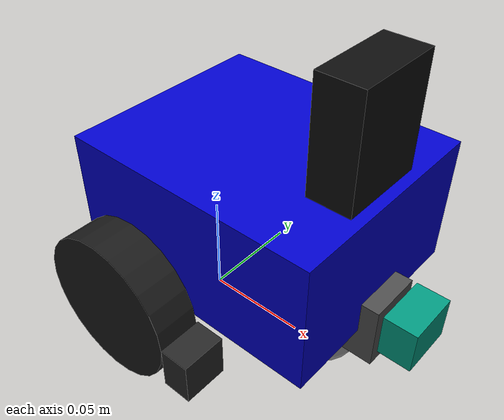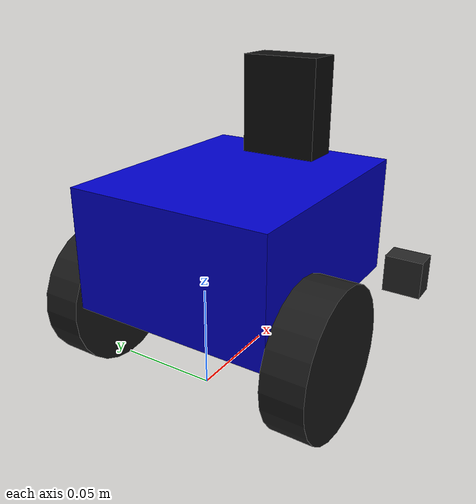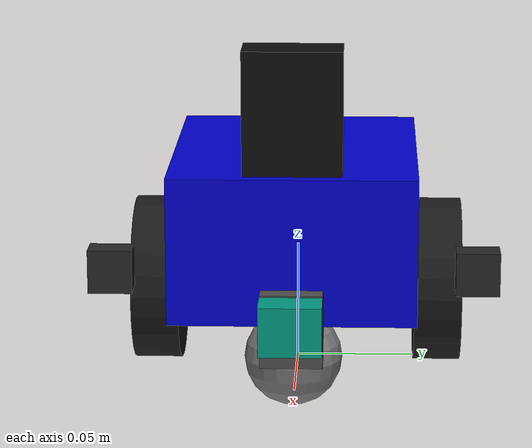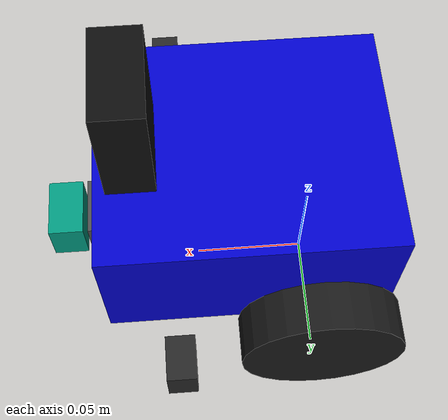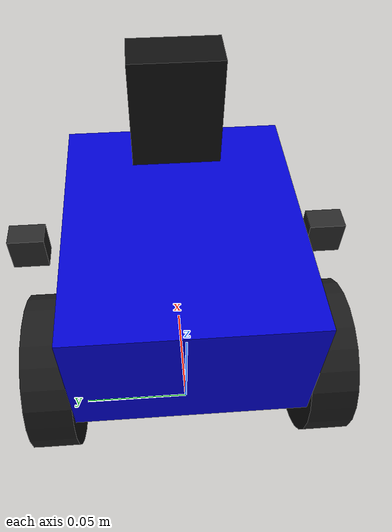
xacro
<?xml version="1.0"?>
<robot name="autonomous_bot" xmlns:xacro="http://www.ros.org/wiki/xacro">

  <!-- ===== DIMENSIONS (meter) =====
       base_link = midpoint of the 2 drive wheels (axle). +X = forward.
       Total size: ~0.20 (L) x 0.20 (W) x 0.10 (H) -> fits 30x30x30 cm -->
  <xacro:property name="body_len" value="0.12"/>
  <xacro:property name="body_wid" value="0.10"/>
  <xacro:property name="body_h"   value="0.06"/>
  <xacro:property name="body_x"   value="0.03"/>   <!-- body centre ahead of axle -->
  <xacro:property name="body_z"   value="0.07"/>   <!-- body centre, bottom at 0.04 -->
  <xacro:property name="wheel_r"  value="0.035"/>
  <xacro:property name="wheel_w"  value="0.02"/>
  <xacro:property name="wheel_y"  value="0.06"/>   <!-- wheel centre, inner face touches body -->
  <xacro:property name="caster_r" value="0.02"/>
  <xacro:property name="caster_x" value="0.065"/>
  <xacro:property name="PI2"      value="1.5707963"/>

  <xacro:property name="servo_x"    value="0.10"/>   <!-- joint (beam pivot) x -->
  <xacro:property name="servo_z"    value="0.045"/>  <!-- joint (beam pivot) z, beam height = 0.080 m abs -->
  <xacro:property name="servo_max"  value="1.4"/>    <!-- joint limit, rad (we sweep +-1.05) -->

  <!-- ===== CAMERA (raised mast, angled down: sees obstacle colours in the
       middle of the image AND the floor finish line in the bottom rows).
       Tilt must match CAM_TILT in the controller. -->
  <xacro:property name="cam_tilt" value="0.35"/>     <!-- rad down from horizontal -->
  <xacro:property name="cam_x"    value="0.075"/>
  <xacro:property name="cam_z"    value="0.15"/>     <!-- lens at 0.185 m above ground -->

  <xacro:property name="sonar_x"   value="0.06"/>
  <xacro:property name="sonar_y"   value="0.075"/>
  <xacro:property name="sonar_z"   value="0.055"/>
  <xacro:property name="sonar_half_cone" value="0.30"/>  <!-- rad: ~30 deg full
       cone, overlaps the front TOF sweep to close the near-side blind arc -->
  <xacro:property name="ray_max" value="5.50"/>

  <!-- ===== 0. FOOTPRINT (ground) ===== -->
  <link name="base_footprint"/>
  <joint name="base_footprint_joint" type="fixed">
    <parent link="base_footprint"/>
    <child link="base_link"/>
    <origin xyz="0 0 0" rpy="0 0 0"/>
  </joint>

  <!-- ===== 1. BASE (chassis) ===== -->
  <link name="base_link">
    <visual>
      <origin xyz="${body_x} 0 ${body_z}" rpy="0 0 0"/>
      <geometry><box size="${body_len} ${body_wid} ${body_h}"/></geometry>
      <material name="blue"><color rgba="0.0 0.0 0.8 1.0"/></material>
    </visual>
    <collision>
      <origin xyz="${body_x} 0 ${body_z}" rpy="0 0 0"/>
      <geometry><box size="${body_len} ${body_wid} ${body_h}"/></geometry>
    </collision>
    <inertial>
      <origin xyz="${body_x} 0 ${body_z}" rpy="0 0 0"/>
      <mass value="1.2"/>
      <inertia ixx="0.00136" ixy="0.0" ixz="0.0" iyy="0.0018" iyz="0.0" izz="0.00244"/>
    </inertial>
  </link>

  <!-- ===== 2. DRIVE WHEELS (N20 motors, rear) ===== -->
  <xacro:macro name="drive_wheel" params="side y">
    <link name="${side}_wheel">
      <visual>
        <origin xyz="0 0 0" rpy="${PI2} 0 0"/>
        <geometry><cylinder radius="${wheel_r}" length="${wheel_w}"/></geometry>
        <material name="black"><color rgba="0.1 0.1 0.1 1.0"/></material>
      </visual>
      <collision>
        <origin xyz="0 0 0" rpy="${PI2} 0 0"/>
        <geometry><cylinder radius="${wheel_r}" length="${wheel_w}"/></geometry>
      </collision>
      <inertial>
        <origin xyz="0 0 0" rpy="${PI2} 0 0"/>
        <mass value="0.05"/>
        <inertia ixx="0.000017" ixy="0.0" ixz="0.0" iyy="0.000017" iyz="0.0" izz="0.000031"/>
      </inertial>
    </link>
    <joint name="${side}_wheel_joint" type="continuous">
      <parent link="base_link"/>
      <child link="${side}_wheel"/>
      <origin xyz="0 ${y} ${wheel_r}" rpy="0 0 0"/>
      <axis xyz="0 1 0"/>
    </joint>
  </xacro:macro>

  <xacro:drive_wheel side="left"  y="${wheel_y}"/>
  <xacro:drive_wheel side="right" y="-${wheel_y}"/>

  <!-- ===== 3. FRONT CASTER (frictionless ball) ===== -->
  <link name="front_caster">
    <visual>
      <geometry><sphere radius="${caster_r}"/></geometry>
      <material name="grey"><color rgba="0.5 0.5 0.5 1.0"/></material>
    </visual>
    <collision>
      <geometry><sphere radius="${caster_r}"/></geometry>
    </collision>
    <inertial>
      <mass value="0.03"/>
      <inertia ixx="0.0000048" ixy="0.0" ixz="0.0" iyy="0.0000048" iyz="0.0" izz="0.0000048"/>
    </inertial>
  </link>
  <joint name="front_caster_joint" type="fixed">
    <parent link="base_link"/>
    <child link="front_caster"/>
    <origin xyz="${caster_x} 0.0 ${caster_r}" rpy="0 0 0"/>
  </joint>

  <!-- ===== 4. SERVO MOUNT (on the body top, front centre) ===== -->
  <link name="servo_mount_link">
    <visual>
      <origin xyz="0 0 -0.015"/>
      <geometry><box size="0.02 0.025 0.03"/></geometry>
      <material name="darkgrey"><color rgba="0.3 0.3 0.3 1.0"/></material>
    </visual>
    <inertial>
      <origin xyz="0 0 -0.015"/>
      <mass value="0.01"/>
      <inertia ixx="0.0000015" ixy="0.0" ixz="0.0" iyy="0.0000015" iyz="0.0" izz="0.0000015"/>
    </inertial>
  </link>
  <joint name="servo_mount_joint" type="fixed">
    <parent link="base_link"/>
    <child link="servo_mount_link"/>
    <origin xyz="0.088 0 ${servo_z + 0.01}" rpy="0 0 0"/>
  </joint>

  <link name="tof_link">
    <visual>
      <origin xyz="0.0075 0 0"/>
      <geometry><box size="0.015 0.025 0.02"/></geometry>
      <material name="teal"><color rgba="0.0 0.6 0.5 1.0"/></material>
    </visual>
    <inertial>
      <origin xyz="0.0075 0 0"/>
      <mass value="0.008"/>
      <inertia ixx="0.0000011" ixy="0.0" ixz="0.0" iyy="0.0000013" iyz="0.0" izz="0.0000022"/>
    </inertial>
  </link>
  <joint name="servo_joint" type="revolute">
    <parent link="base_link"/>
    <child link="tof_link"/>
    <origin xyz="${servo_x} 0 ${servo_z}" rpy="0 0 0"/>
    <axis xyz="0 0 1"/>
    <limit lower="-${servo_max}" upper="${servo_max}" effort="10" velocity="3.5"/>
  </joint>

  <gazebo reference="tof_link">
    <material>Gazebo/DarkGrey</material>
    <sensor type="ray" name="tof_sensor">
      <pose>0 0 0 0 0 0</pose>
      <visualize>true</visualize>
      <update_rate>25</update_rate>
      <ray>
        <scan>
          <horizontal>
            <samples>1</samples>
            <resolution>1</resolution>
            <min_angle>0.0</min_angle>
            <max_angle>0.001</max_angle>
          </horizontal>
        </scan>
        <range>
          <min>0.02</min>
          <max>${ray_max}</max>
          <resolution>0.01</resolution>
        </range>
        <noise>
          <type>gaussian</type>
          <mean>0.0</mean>
          <stddev>0.004</stddev>
        </noise>
      </ray>
      <plugin name="tof_plugin" filename="libgazebo_ros_ray_sensor.so">
        <ros>
          <namespace>/</namespace>
          <remapping>~/out:=tof_range</remapping>
        </ros>
        <output_type>sensor_msgs/Range</output_type>
        <radiation_type>infrared</radiation_type>
        <frame_name>tof_link</frame_name>
      </plugin>
    </sensor>
  </gazebo>

  <gazebo>
    <plugin name="servo_pose_trajectory" filename="libgazebo_ros_joint_pose_trajectory.so">
      <update_rate>50</update_rate>
      <ros><namespace>/</namespace></ros>
    </plugin>
  </gazebo>

  <link name="front_camera_link">
    <visual>
      <origin xyz="0 0 -0.025"/>
      <geometry><box size="0.02 0.04 0.05"/></geometry>
      <material name="cam_black"><color rgba="0.05 0.05 0.05 1.0"/></material>
    </visual>
    <inertial>
      <origin xyz="0 0 -0.025"/>
      <mass value="0.005"/>
      <inertia ixx="0.000001" ixy="0.0" ixz="0.0" iyy="0.000001" iyz="0.0" izz="0.000001"/>
    </inertial>
  </link>

  <!-- fixed to base_link: mast standing on the body top -->
  <joint name="front_camera_joint" type="fixed">
    <parent link="base_link"/>
    <child link="front_camera_link"/>
    <origin xyz="${cam_x} 0 ${cam_z}" rpy="0 0 0"/>
  </joint>

  <gazebo reference="front_camera_link">
    <material>Gazebo/Black</material>
    <sensor type="camera" name="front_camera_sensor">
      <pose>0 0 0 0 ${cam_tilt} 0</pose>
      <always_on>true</always_on>
      <visualize>false</visualize>
      <update_rate>10</update_rate>
      <camera>
        <horizontal_fov>1.2</horizontal_fov>
        <image><width>320</width><height>240</height><format>R8G8B8</format></image>
        <clip><near>0.02</near><far>10.0</far></clip>
      </camera>
      <plugin name="front_camera_plugin" filename="libgazebo_ros_camera.so">
        <ros><namespace>/</namespace></ros>
        <camera_name>front_camera</camera_name>
        <frame_name>front_camera_link</frame_name>
      </plugin>
    </sensor>
  </gazebo>

  <!-- ===== 6. IMU (MPU6050-like) ===== -->
  <link name="imu_link">
    <inertial>
      <mass value="0.001"/>
      <inertia ixx="0.000001" ixy="0.0" ixz="0.0" iyy="0.000001" iyz="0.0" izz="0.000001"/>
    </inertial>
  </link>
  <joint name="imu_joint" type="fixed">
    <parent link="base_link"/>
    <child link="imu_link"/>
    <origin xyz="0 0 0.07" rpy="0 0 0"/>
  </joint>

  <gazebo reference="imu_link">
    <sensor name="mpu6050" type="imu">
      <always_on>true</always_on>
      <update_rate>50</update_rate>
      <plugin name="imu_plugin" filename="libgazebo_ros_imu_sensor.so">
        <ros>
          <namespace>/</namespace>
          <remapping>~/out:=imu/data</remapping>
        </ros>
      </plugin>
    </sensor>
  </gazebo>

  <xacro:macro name="side_sonar" params="side y yaw">
    <link name="sonar_${side}_link">
      <visual>
        <geometry><box size="0.018 0.012 0.018"/></geometry>
        <material name="sonar_dark"><color rgba="0.15 0.15 0.15 1.0"/></material>
      </visual>
      <inertial>
        <mass value="0.003"/>
        <inertia ixx="0.0000002" ixy="0.0" ixz="0.0"
                 iyy="0.0000002" iyz="0.0" izz="0.0000002"/>
      </inertial>
    </link>
    <joint name="sonar_${side}_joint" type="fixed">
      <parent link="base_link"/>
      <child link="sonar_${side}_link"/>
      <origin xyz="${sonar_x} ${y} ${sonar_z}" rpy="0 0 ${yaw}"/>
    </joint>

    <gazebo reference="sonar_${side}_link">
      <material>Gazebo/DarkGrey</material>
      <sensor type="ray" name="sonar_${side}_sensor">
        <pose>0 0 0 0 0 0</pose>
        <visualize>true</visualize>
        <update_rate>15</update_rate>
        <ray>
          <scan>
            <horizontal>
              <samples>5</samples>
              <resolution>1</resolution>
              <min_angle>-${sonar_half_cone}</min_angle>
              <max_angle>${sonar_half_cone}</max_angle>
            </horizontal>
          </scan>
          <range>
            <min>0.02</min>
            <max>${ray_max}</max>
            <resolution>0.01</resolution>
          </range>
          <noise>
            <type>gaussian</type>
            <mean>0.0</mean>
            <stddev>0.008</stddev>
          </noise>
        </ray>
        <plugin name="sonar_${side}_plugin" filename="libgazebo_ros_ray_sensor.so">
          <ros>
            <namespace>/</namespace>
            <remapping>~/out:=sonar_${side}</remapping>
          </ros>
          <output_type>sensor_msgs/Range</output_type>
          <radiation_type>ultrasound</radiation_type>
          <frame_name>sonar_${side}_link</frame_name>
        </plugin>
      </sensor>
    </gazebo>
  </xacro:macro>

  <xacro:side_sonar side="left"  y="${sonar_y}"  yaw="${PI2}"/>
  <xacro:side_sonar side="right" y="${-sonar_y}" yaw="${-PI2}"/>

  <!-- ===== 7. GAZEBO DIFF DRIVE (encoder odometry) ===== -->
  <gazebo>
    <plugin name="diff_drive_controller" filename="libgazebo_ros_diff_drive.so">
      <update_rate>50</update_rate>
      <left_joint>left_wheel_joint</left_joint>
      <right_joint>right_wheel_joint</right_joint>
      <wheel_separation>${2*wheel_y}</wheel_separation>
      <wheel_diameter>${2*wheel_r}</wheel_diameter>
      <max_wheel_torque>5</max_wheel_torque>
      <max_wheel_acceleration>8.0</max_wheel_acceleration>
      <command_topic>cmd_vel</command_topic>
      <odometry_topic>odom</odometry_topic>
      <odometry_source>0</odometry_source>  <!-- 0 = wheel encoders -->
      <publish_odom>true</publish_odom>
      <publish_odom_tf>true</publish_odom_tf>
      <publish_wheel_tf>false</publish_wheel_tf>
      <odometry_frame>odom</odometry_frame>
      <robot_base_frame>base_footprint</robot_base_frame>
    </plugin>

    <!-- wheel + servo joint states -> robot_state_publisher moves them in RViz -->
    <plugin name="joint_state_publisher" filename="libgazebo_ros_joint_state_publisher.so">
      <ros><remapping>~/out:=joint_states</remapping></ros>
      <update_rate>30</update_rate>
      <joint_name>left_wheel_joint</joint_name>
      <joint_name>right_wheel_joint</joint_name>
      <joint_name>servo_joint</joint_name>
    </plugin>
  </gazebo>

  <!-- ===== GAZEBO COLORS + FRICTION ===== -->
  <gazebo reference="base_link">
    <material>Gazebo/Blue</material>
  </gazebo>
  <gazebo reference="servo_mount_link">
    <material>Gazebo/Grey</material>
  </gazebo>
  <gazebo reference="left_wheel">
    <material>Gazebo/Black</material>
    <mu1>1.0</mu1><mu2>1.0</mu2>
  </gazebo>
  <gazebo reference="right_wheel">
    <material>Gazebo/Black</material>
    <mu1>1.0</mu1><mu2>1.0</mu2>
  </gazebo>
  <gazebo reference="front_caster">
    <material>Gazebo/Grey</material>
    <mu1>0.0</mu1><mu2>0.0</mu2>   <!-- caster must slide freely -->
  </gazebo>

</robot>
